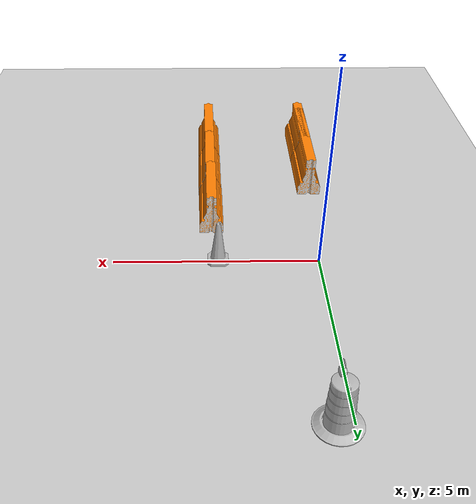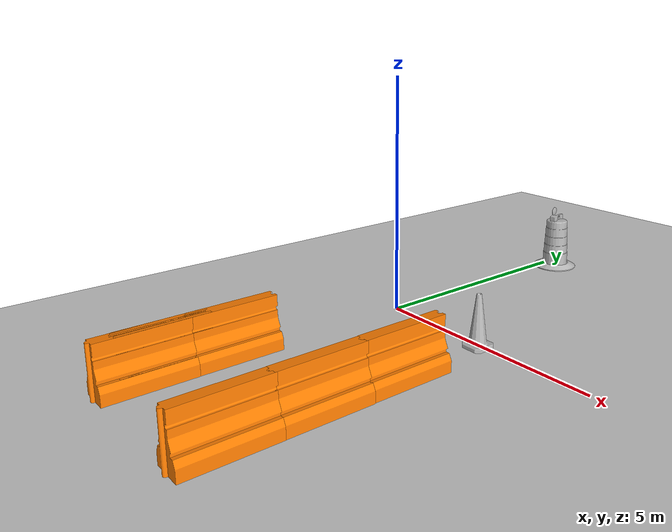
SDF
<sdf version="1.7">
 <world name="default">
  <light name="sun" type="directional">
   <pose>0 0 10 0 -0 0</pose>
   <diffuse>0.8 0.8 0.8 1</diffuse>
   <specular>0.2 0.2 0.2 1</specular>
   <attenuation>
    <range>1000</range>
    <constant>0.9</constant>
    <linear>0.01</linear>
    <quadratic>0.001</quadratic>
   </attenuation>
   <direction>-0.5 0.1 -0.9</direction>
   <spot><inner_angle>0</inner_angle><outer_angle>0</outer_angle><falloff>0</falloff></spot>
  </light>
  <model name="ground_plane">
   <static>1</static>
   <link name="link">
    <collision name="collision">
     <geometry><plane><normal>0 0 1</normal><size>100 100</size></plane></geometry>
     <surface>
      <contact><collide_bitmask>65535</collide_bitmask></contact>
      <friction><ode><mu>100</mu><mu2>50</mu2></ode></friction>
     </surface>
    </collision>
    <visual name="visual">
     <cast_shadows>0</cast_shadows>
     <geometry><plane><normal>0 0 1</normal><size>100 100</size></plane></geometry>
     <material>
      <script><uri>file://media/materials/scripts/gazebo.material</uri><name>Gazebo/Grey</name></script>
     </material>
    </visual>
   </link>
  </model>
  <gravity>0 0 -9.8</gravity>
  <magnetic_field>6e-06 2.3e-05 -4.2e-05</magnetic_field>
  <atmosphere type="adiabatic"/>
  <physics type="ode">
   <max_step_size>0.001</max_step_size>
   <real_time_factor>1</real_time_factor>
   <real_time_update_rate>1000</real_time_update_rate>
  </physics>
  <scene><ambient>0.4 0.4 0.4 1</ambient><background>0.7 0.7 0.7 1</background><shadows>1</shadows></scene>
  <spherical_coordinates>
   <surface_model>EARTH_WGS84</surface_model>
   <latitude_deg>0</latitude_deg>
   <longitude_deg>0</longitude_deg>
   <elevation>0</elevation>
   <heading_deg>0</heading_deg>
  </spherical_coordinates>
  <model name="Construction Cone">
   <link name="link">
    <collision name="collision">
     <geometry>
      <mesh><scale>10 10 10</scale><uri>model://construction_cone/meshes/construction_cone.dae</uri></mesh>
     </geometry>
    </collision>
    <visual name="visual">
     <geometry>
      <mesh><scale>10 10 10</scale><uri>model://construction_cone/meshes/construction_cone.dae</uri></mesh>
     </geometry>
    </visual>
    <inertial>
     <inertia><ixx>1</ixx><ixy>0</ixy><ixz>0</ixz><iyy>1</iyy><iyz>0</iyz><izz>1</izz></inertia>
     <mass>1</mass>
    </inertial>
   </link>
   <pose>2.461 -0.060597 -0 0 -0 0</pose>
  </model>
  <model name="Construction Barrel">
   <link name="link">
    <inertial>
     <pose>0 0 0.4 0 -0 0</pose>
     <mass>500</mass>
     <inertia><ixx>51.2096</ixx><iyy>51.2096</iyy><izz>25</izz><ixy>0</ixy><ixz>0</ixz><iyz>0</iyz></inertia>
    </inertial>
    <collision name="collision">
     <geometry><mesh><uri>model://construction_barrel/meshes/construction_barrel.dae</uri></mesh></geometry>
    </collision>
    <visual name="visual">
     <geometry><mesh><uri>model://construction_barrel/meshes/construction_barrel.dae</uri></mesh></geometry>
    </visual>
   </link>
   <pose>0.331285 5.00033 -1e-06 3e-06 -2e-06 -1.41539</pose>
  </model>
  <model name="drc_practice_organge_jersey_barrier">
   <static>1</static>
   <link name="link">
    <visual name="visual">
     <geometry>
      <mesh><uri>model://drc_practice_orange_jersey_barrier/meshes/jersey_barrier.dae</uri></mesh>
     </geometry>
    </visual>
    <collision name="collision">
     <geometry>
      <mesh><uri>model://drc_practice_orange_jersey_barrier/meshes/jersey_barrier.dae</uri></mesh>
     </geometry>
    </collision>
   </link>
   <pose>-0.127017 -5.23315 0 0 -0 0</pose>
  </model>
  <model name="drc_practice_organge_jersey_barrier_0">
   <static>1</static>
   <link name="link">
    <visual name="visual">
     <geometry>
      <mesh><uri>model://drc_practice_orange_jersey_barrier/meshes/jersey_barrier.dae</uri></mesh>
     </geometry>
    </visual>
    <collision name="collision">
     <geometry>
      <mesh><uri>model://drc_practice_orange_jersey_barrier/meshes/jersey_barrier.dae</uri></mesh>
     </geometry>
    </collision>
   </link>
   <pose>2.5978 -2.08859 0 0 -0 0</pose>
  </model>
  <model name="drc_practice_organge_jersey_barrier_1">
   <static>1</static>
   <link name="link">
    <visual name="visual">
     <geometry>
      <mesh><uri>model://drc_practice_orange_jersey_barrier/meshes/jersey_barrier.dae</uri></mesh>
     </geometry>
    </visual>
    <collision name="collision">
     <geometry>
      <mesh><uri>model://drc_practice_orange_jersey_barrier/meshes/jersey_barrier.dae</uri></mesh>
     </geometry>
    </collision>
   </link>
   <pose>-0.118573 -3.88743 0 0 -0 0</pose>
  </model>
  <model name="drc_practice_organge_jersey_barrier_2">
   <static>1</static>
   <link name="link">
    <visual name="visual">
     <geometry>
      <mesh><uri>model://drc_practice_orange_jersey_barrier/meshes/jersey_barrier.dae</uri></mesh>
     </geometry>
    </visual>
    <collision name="collision">
     <geometry>
      <mesh><uri>model://drc_practice_orange_jersey_barrier/meshes/jersey_barrier.dae</uri></mesh>
     </geometry>
    </collision>
   </link>
   <pose>2.6024 -3.83486 0 0 -0 0</pose>
  </model>
  <model name="drc_practice_organge_jersey_barrier_3">
   <static>1</static>
   <link name="link">
    <visual name="visual">
     <geometry>
      <mesh><uri>model://drc_practice_orange_jersey_barrier/meshes/jersey_barrier.dae</uri></mesh>
     </geometry>
    </visual>
    <collision name="collision">
     <geometry>
      <mesh><uri>model://drc_practice_orange_jersey_barrier/meshes/jersey_barrier.dae</uri></mesh>
     </geometry>
    </collision>
   </link>
   <pose>-0.121128 -5.61596 0 0 -0 0</pose>
  </model>
  <model name="drc_practice_organge_jersey_barrier_3_clone">
   <static>1</static>
   <link name="link">
    <visual name="visual">
     <geometry>
      <mesh><uri>model://drc_practice_orange_jersey_barrier/meshes/jersey_barrier.dae</uri></mesh>
     </geometry>
    </visual>
    <collision name="collision">
     <geometry>
      <mesh><uri>model://drc_practice_orange_jersey_barrier/meshes/jersey_barrier.dae</uri></mesh>
     </geometry>
    </collision>
   </link>
   <pose>2.5985 -5.56184 0 0 -0 0</pose>
  </model>
 </world>
</sdf>
